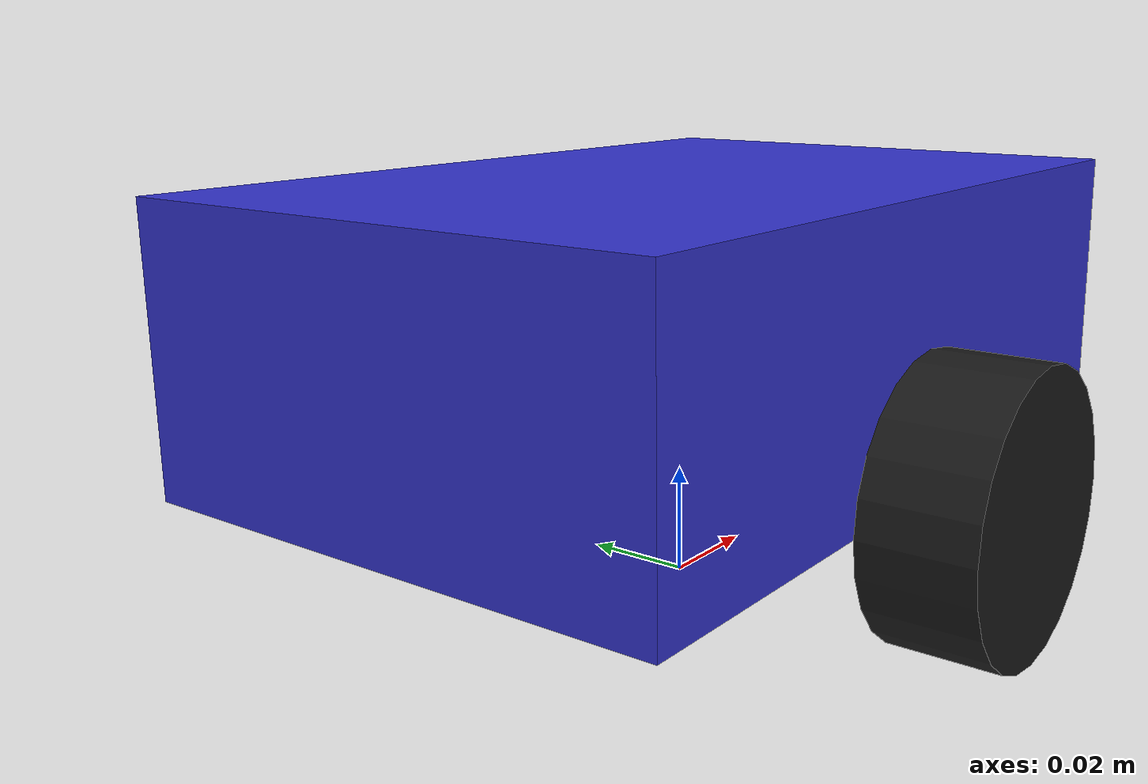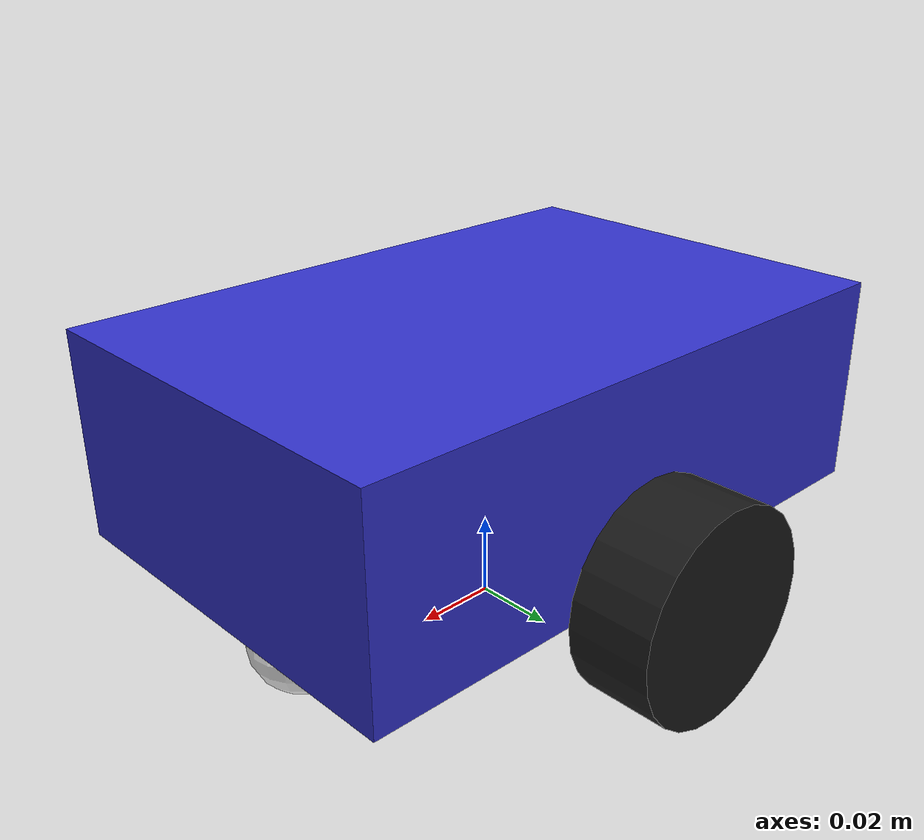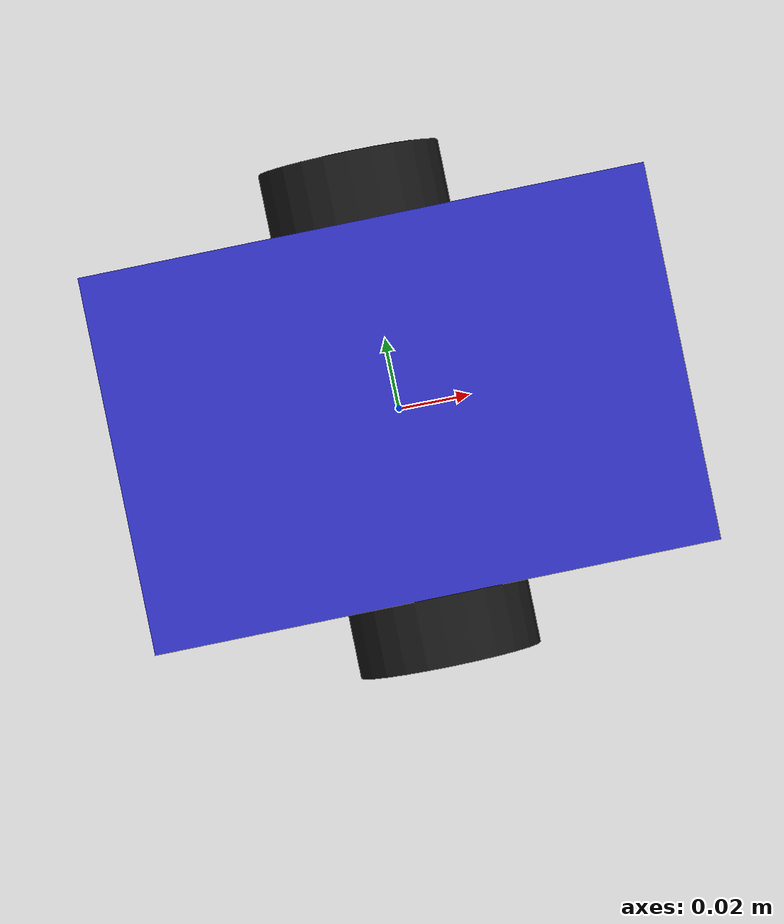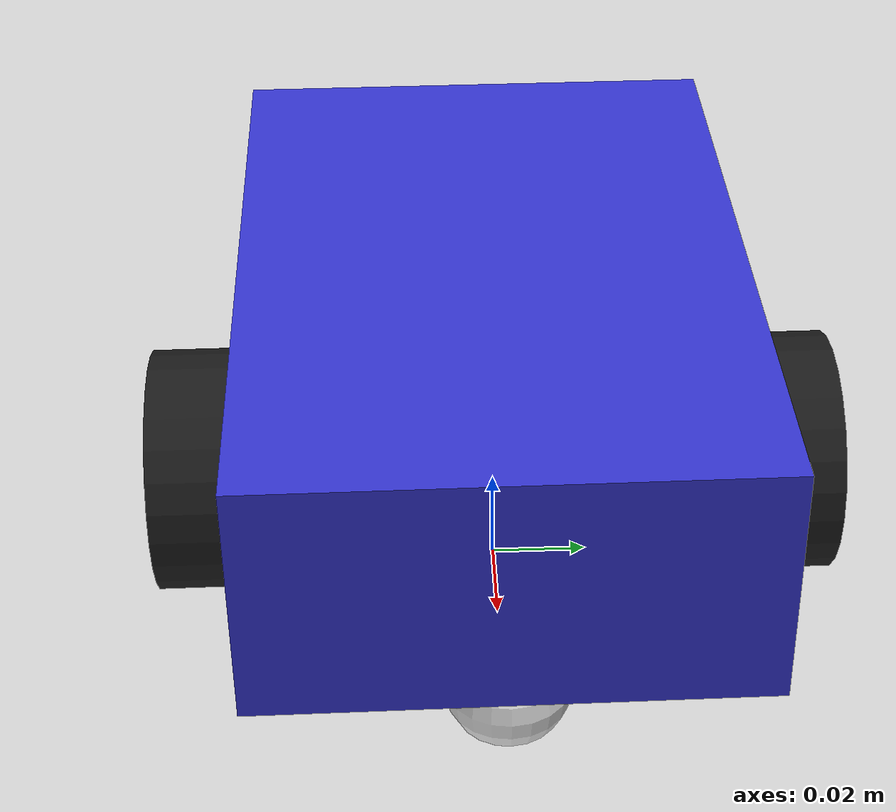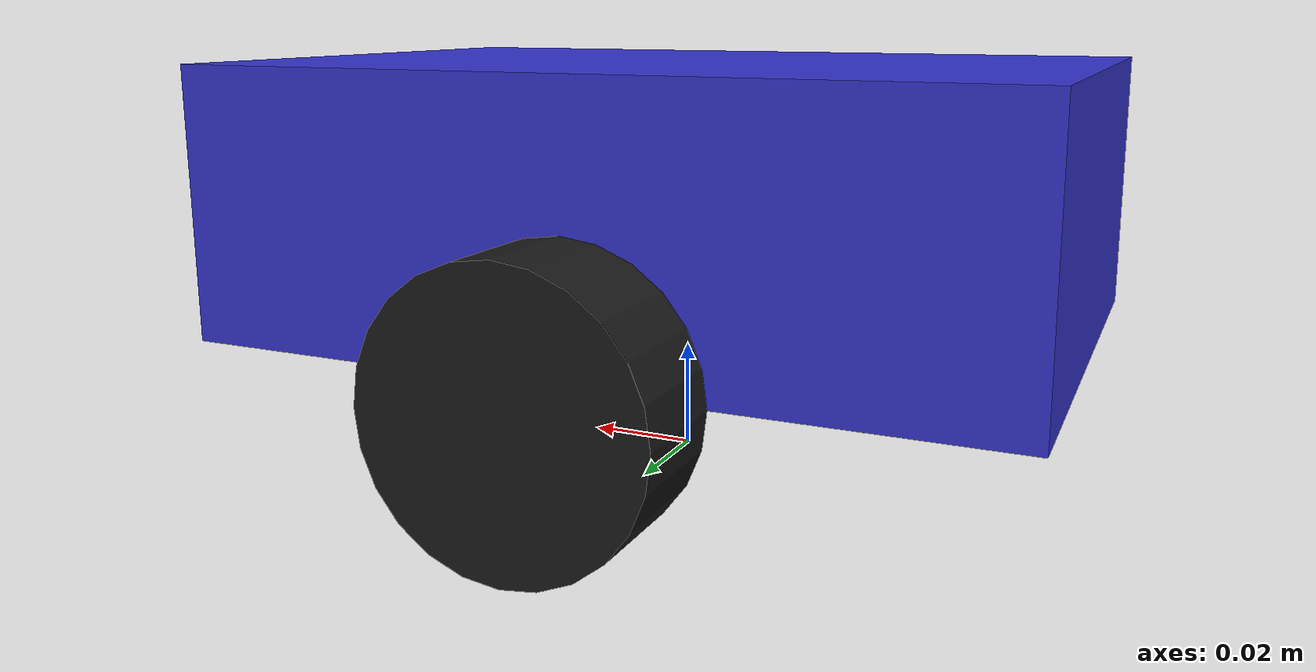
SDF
<?xml version="1.0" ?>
<sdf version="1.8">
  <model name="cyberbrick_robot">
    <pose>0 0 0.05 0 0 0</pose>

    <!-- Chassis -->
    <link name="base_link">
      <inertial>
        <mass>0.5</mass>
        <inertia>
          <ixx>0.001</ixx><ixy>0</ixy><ixz>0</ixz>
          <iyy>0.001</iyy><iyz>0</iyz>
          <izz>0.001</izz>
        </inertia>
      </inertial>
      <collision name="collision">
        <geometry>
          <box><size>0.15 0.10 0.05</size></box>
        </geometry>
      </collision>
      <visual name="visual">
        <geometry>
          <box><size>0.15 0.10 0.05</size></box>
        </geometry>
        <material>
          <ambient>0.2 0.2 0.8 1</ambient>
          <diffuse>0.2 0.2 0.8 1</diffuse>
        </material>
      </visual>
    </link>

    <!-- Left Wheel -->
    <link name="left_wheel">
      <pose>0 0.06 -0.025 -1.5707 0 0</pose>
      <inertial>
        <mass>0.1</mass>
        <inertia>
          <ixx>0.0001</ixx><ixy>0</ixy><ixz>0</ixz>
          <iyy>0.0001</iyy><iyz>0</iyz>
          <izz>0.0001</izz>
        </inertia>
      </inertial>
      <collision name="collision">
        <geometry>
          <cylinder><radius>0.025</radius><length>0.02</length></cylinder>
        </geometry>
      </collision>
      <visual name="visual">
        <geometry>
          <cylinder><radius>0.025</radius><length>0.02</length></cylinder>
        </geometry>
        <material>
          <ambient>0.1 0.1 0.1 1</ambient>
          <diffuse>0.1 0.1 0.1 1</diffuse>
        </material>
      </visual>
    </link>

    <!-- Right Wheel -->
    <link name="right_wheel">
      <pose>0 -0.06 -0.025 -1.5707 0 0</pose>
      <inertial>
        <mass>0.1</mass>
        <inertia>
          <ixx>0.0001</ixx><ixy>0</ixy><ixz>0</ixz>
          <iyy>0.0001</iyy><iyz>0</iyz>
          <izz>0.0001</izz>
        </inertia>
      </inertial>
      <collision name="collision">
        <geometry>
          <cylinder><radius>0.025</radius><length>0.02</length></cylinder>
        </geometry>
      </collision>
      <visual name="visual">
        <geometry>
          <cylinder><radius>0.025</radius><length>0.02</length></cylinder>
        </geometry>
        <material>
          <ambient>0.1 0.1 0.1 1</ambient>
          <diffuse>0.1 0.1 0.1 1</diffuse>
        </material>
      </visual>
    </link>

    <!-- Caster Wheel -->
    <link name="caster">
      <pose>0.055 0 -0.0375 0 0 0</pose>
      <inertial>
        <mass>0.05</mass>
        <inertia>
          <ixx>0.00001</ixx><ixy>0</ixy><ixz>0</ixz>
          <iyy>0.00001</iyy><iyz>0</iyz>
          <izz>0.00001</izz>
        </inertia>
      </inertial>
      <collision name="collision">
        <geometry>
          <sphere><radius>0.0125</radius></sphere>
        </geometry>
      </collision>
      <visual name="visual">
        <geometry>
          <sphere><radius>0.0125</radius></sphere>
        </geometry>
        <material>
          <ambient>0.9 0.9 0.9 1</ambient>
          <diffuse>0.9 0.9 0.9 1</diffuse>
        </material>
      </visual>
    </link>

    <!-- Joints -->
    <joint name="left_wheel_joint" type="revolute">
      <parent>base_link</parent>
      <child>left_wheel</child>
      <axis>
        <xyz>0 0 1</xyz>
        <limit>
          <lower>-1e+16</lower>
          <upper>1e+16</upper>
        </limit>
      </axis>
    </joint>

    <joint name="right_wheel_joint" type="revolute">
      <parent>base_link</parent>
      <child>right_wheel</child>
      <axis>
        <xyz>0 0 1</xyz>
        <limit>
          <lower>-1e+16</lower>
          <upper>1e+16</upper>
        </limit>
      </axis>
    </joint>

    <joint name="caster_joint" type="ball">
      <parent>base_link</parent>
      <child>caster</child>
    </joint>

    <!-- Differential Drive Plugin -->
    <plugin filename="libignition-gazebo6-diff-drive-system.so" name="ignition::gazebo::systems::DiffDrive">
      <left_joint>left_wheel_joint</left_joint>
      <right_joint>right_wheel_joint</right_joint>
      <wheel_separation>0.12</wheel_separation>
      <wheel_radius>0.025</wheel_radius>
      <odom_publish_frequency>50</odom_publish_frequency>
      <cmd_vel_topic>/cmd_vel</cmd_vel_topic>
      <odom_topic>/odom</odom_topic>
    </plugin>

  </model>
</sdf>
